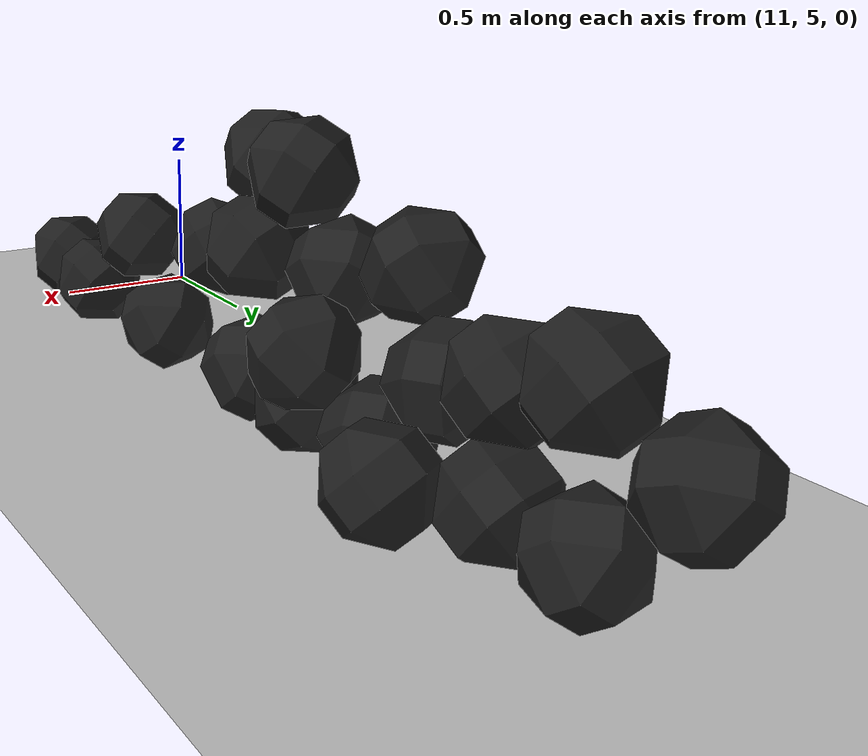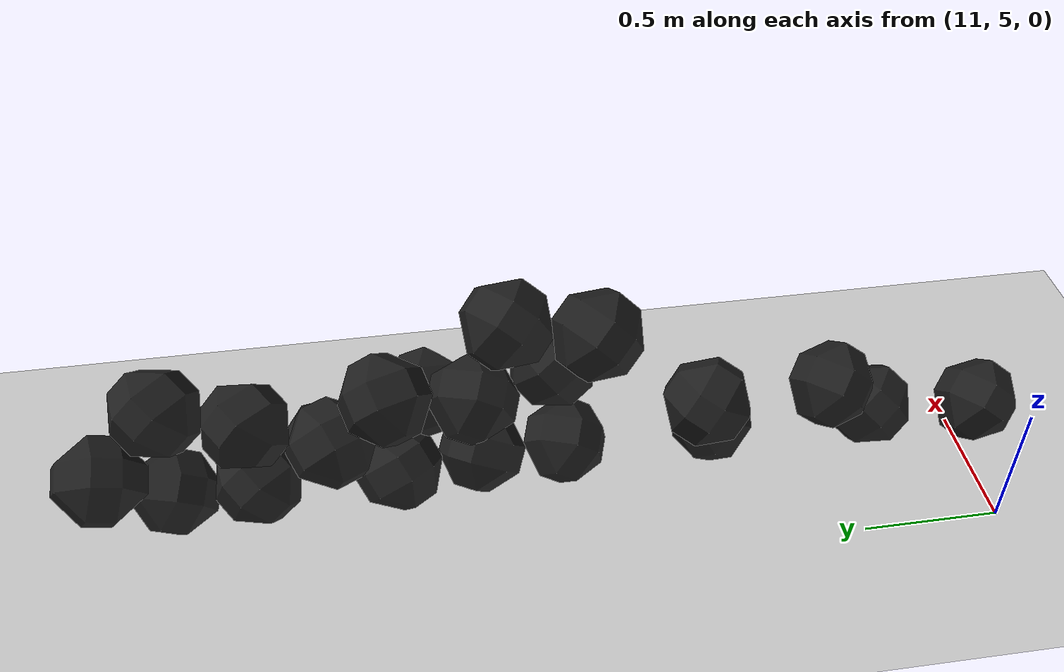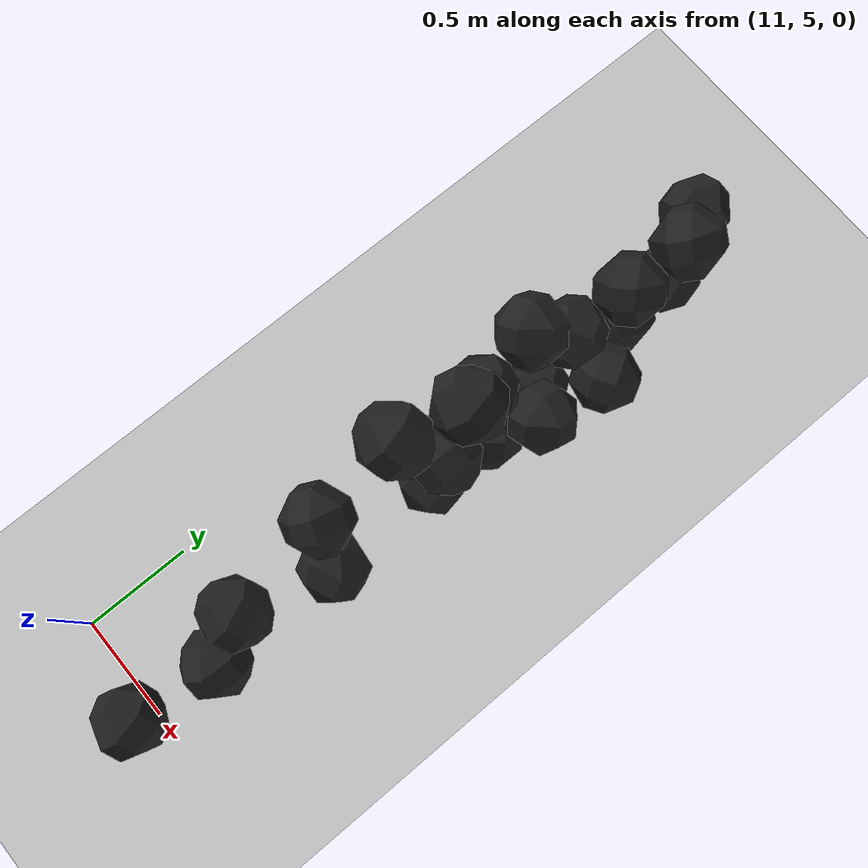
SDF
<sdf version="1.6">
 <world name="default">
  <model name="ground_plane">
   <static>1</static>
   <link name="link">
    <collision name="collision">
     <geometry><plane><normal>0 0 1</normal><size>100 100</size></plane></geometry>
     <surface><friction><ode><mu>100</mu><mu2>50</mu2></ode></friction></surface>
    </collision>
    <visual name="visual">
     <cast_shadows>0</cast_shadows>
     <geometry><plane><normal>0 0 1</normal><size>100 100</size></plane></geometry>
     <material>
      <script><uri>file://media/materials/scripts/gazebo.material</uri><name>Gazebo/Grey</name></script>
     </material>
    </visual>
   </link>
  </model>
  <model name="haoduomiantiaa_2">
   <link name="link_0">
    <inertial>
     <mass>0.2</mass>
     <inertia>
      <ixx>0.166667</ixx>
      <ixy>0</ixy>
      <ixz>0</ixz>
      <iyy>0.166667</iyy>
      <iyz>0</iyz>
      <izz>0.166667</izz>
     </inertia>
    </inertial>
    <visual name="visual">
     <geometry>
      <mesh>
       <uri>/home/oliver/catkin_ws/src/pudong_gazebo/world/stl/haoduomianti.stl</uri>
       <scale>1 1 1</scale>
      </mesh>
     </geometry>
     <material>
      <lighting>1</lighting>
      <script><uri>file://media/materials/scripts/gazebo.material</uri><name>Gazebo/Black</name></script>
      <shader type="pixel"><normal_map>__default__</normal_map></shader>
      <ambient>0.3 0.3 0.3 1</ambient>
      <diffuse>0.7 0.7 0.7 1</diffuse>
      <specular>0.01 0.01 0.01 1</specular>
      <emissive>0 0 0 1</emissive>
     </material>
    </visual>
    <collision name="collision">
     <geometry>
      <mesh>
       <uri>/home/oliver/catkin_ws/src/pudong_gazebo/world/stl/haoduomianti.stl</uri>
       <scale>1 1 1</scale>
      </mesh>
     </geometry>
     <surface>
      <friction>
       <ode><mu>1</mu><mu2>1</mu2><fdir1>0 0 0</fdir1><slip1>0</slip1><slip2>0</slip2></ode>
       <torsional>
        <coefficient>1</coefficient>
        <patch_radius>0</patch_radius>
        <surface_radius>0</surface_radius>
        <use_patch_radius>1</use_patch_radius>
        <ode><slip>0</slip></ode>
       </torsional>
      </friction>
      <bounce><restitution_coefficient>0</restitution_coefficient><threshold>1e+06</threshold></bounce>
      <contact>
       <collide_without_contact>0</collide_without_contact>
       <collide_without_contact_bitmask>1</collide_without_contact_bitmask>
       <collide_bitmask>1</collide_bitmask>
       <ode>
        <soft_cfm>0</soft_cfm>
        <soft_erp>0.2</soft_erp>
        <kp>1e+13</kp>
        <kd>1</kd>
        <max_vel>0.01</max_vel>
        <min_depth>0</min_depth>
       </ode>
       <bullet>
        <split_impulse>1</split_impulse>
        <split_impulse_penetration_threshold>-0.01</split_impulse_penetration_threshold>
        <soft_cfm>0</soft_cfm>
        <soft_erp>0.2</soft_erp>
        <kp>1e+13</kp>
        <kd>1</kd>
       </bullet>
      </contact>
     </surface>
    </collision>
   </link>
   <static>0</static>
   <pose>11.348 7.28594 -0.07324 1.57335 -0.785956 0.646632</pose>
  </model>
  <model name="haoduomiantiaa_8">
   <link name="link_0">
    <inertial>
     <mass>0.2</mass>
     <inertia>
      <ixx>0.166667</ixx>
      <ixy>0</ixy>
      <ixz>0</ixz>
      <iyy>0.166667</iyy>
      <iyz>0</iyz>
      <izz>0.166667</izz>
     </inertia>
    </inertial>
    <visual name="visual">
     <geometry>
      <mesh>
       <uri>/home/oliver/catkin_ws/src/pudong_gazebo/world/stl/haoduomianti.stl</uri>
       <scale>1 1 1</scale>
      </mesh>
     </geometry>
     <material>
      <lighting>1</lighting>
      <script><uri>file://media/materials/scripts/gazebo.material</uri><name>Gazebo/Black</name></script>
      <shader type="pixel"><normal_map>__default__</normal_map></shader>
      <ambient>0.3 0.3 0.3 1</ambient>
      <diffuse>0.7 0.7 0.7 1</diffuse>
      <specular>0.01 0.01 0.01 1</specular>
      <emissive>0 0 0 1</emissive>
     </material>
    </visual>
    <collision name="collision">
     <geometry>
      <mesh>
       <uri>/home/oliver/catkin_ws/src/pudong_gazebo/world/stl/haoduomianti.stl</uri>
       <scale>1 1 1</scale>
      </mesh>
     </geometry>
     <surface>
      <friction>
       <ode><mu>1</mu><mu2>1</mu2><fdir1>0 0 0</fdir1><slip1>0</slip1><slip2>0</slip2></ode>
       <torsional>
        <coefficient>1</coefficient>
        <patch_radius>0</patch_radius>
        <surface_radius>0</surface_radius>
        <use_patch_radius>1</use_patch_radius>
        <ode><slip>0</slip></ode>
       </torsional>
      </friction>
      <bounce><restitution_coefficient>0</restitution_coefficient><threshold>1e+06</threshold></bounce>
      <contact>
       <collide_without_contact>0</collide_without_contact>
       <collide_without_contact_bitmask>1</collide_without_contact_bitmask>
       <collide_bitmask>1</collide_bitmask>
       <ode>
        <soft_cfm>0</soft_cfm>
        <soft_erp>0.2</soft_erp>
        <kp>1e+13</kp>
        <kd>1</kd>
        <max_vel>0.01</max_vel>
        <min_depth>0</min_depth>
       </ode>
       <bullet>
        <split_impulse>1</split_impulse>
        <split_impulse_penetration_threshold>-0.01</split_impulse_penetration_threshold>
        <soft_cfm>0</soft_cfm>
        <soft_erp>0.2</soft_erp>
        <kp>1e+13</kp>
        <kd>1</kd>
       </bullet>
      </contact>
     </surface>
    </collision>
   </link>
   <static>0</static>
   <pose>11.5057 5.97328 -0.113439 0.784591 -0.616666 -2.20719</pose>
  </model>
  <model name="haoduomiantiaa_10">
   <link name="link_0">
    <inertial>
     <mass>0.2</mass>
     <inertia>
      <ixx>0.166667</ixx>
      <ixy>0</ixy>
      <ixz>0</ixz>
      <iyy>0.166667</iyy>
      <iyz>0</iyz>
      <izz>0.166667</izz>
     </inertia>
    </inertial>
    <visual name="visual">
     <geometry>
      <mesh>
       <uri>/home/oliver/catkin_ws/src/pudong_gazebo/world/stl/haoduomianti.stl</uri>
       <scale>1 1 1</scale>
      </mesh>
     </geometry>
     <material>
      <lighting>1</lighting>
      <script><uri>file://media/materials/scripts/gazebo.material</uri><name>Gazebo/Black</name></script>
      <shader type="pixel"><normal_map>__default__</normal_map></shader>
      <ambient>0.3 0.3 0.3 1</ambient>
      <diffuse>0.7 0.7 0.7 1</diffuse>
      <specular>0.01 0.01 0.01 1</specular>
      <emissive>0 0 0 1</emissive>
     </material>
    </visual>
    <collision name="collision">
     <geometry>
      <mesh>
       <uri>/home/oliver/catkin_ws/src/pudong_gazebo/world/stl/haoduomianti.stl</uri>
       <scale>1 1 1</scale>
      </mesh>
     </geometry>
     <surface>
      <friction>
       <ode><mu>1</mu><mu2>1</mu2><fdir1>0 0 0</fdir1><slip1>0</slip1><slip2>0</slip2></ode>
       <torsional>
        <coefficient>1</coefficient>
        <patch_radius>0</patch_radius>
        <surface_radius>0</surface_radius>
        <use_patch_radius>1</use_patch_radius>
        <ode><slip>0</slip></ode>
       </torsional>
      </friction>
      <bounce><restitution_coefficient>0</restitution_coefficient><threshold>1e+06</threshold></bounce>
      <contact>
       <collide_without_contact>0</collide_without_contact>
       <collide_without_contact_bitmask>1</collide_without_contact_bitmask>
       <collide_bitmask>1</collide_bitmask>
       <ode>
        <soft_cfm>0</soft_cfm>
        <soft_erp>0.2</soft_erp>
        <kp>1e+13</kp>
        <kd>1</kd>
        <max_vel>0.01</max_vel>
        <min_depth>0</min_depth>
       </ode>
       <bullet>
        <split_impulse>1</split_impulse>
        <split_impulse_penetration_threshold>-0.01</split_impulse_penetration_threshold>
        <soft_cfm>0</soft_cfm>
        <soft_erp>0.2</soft_erp>
        <kp>1e+13</kp>
        <kd>1</kd>
       </bullet>
      </contact>
     </surface>
    </collision>
   </link>
   <static>0</static>
   <pose>11.5522 6.95737 -0.0816 1.41039 -0.778921 -0.520267</pose>
  </model>
  <model name="haoduomiantiaa_14">
   <link name="link_0">
    <inertial>
     <mass>0.2</mass>
     <inertia>
      <ixx>0.166667</ixx>
      <ixy>0</ixy>
      <ixz>0</ixz>
      <iyy>0.166667</iyy>
      <iyz>0</iyz>
      <izz>0.166667</izz>
     </inertia>
    </inertial>
    <visual name="visual">
     <geometry>
      <mesh>
       <uri>/home/oliver/catkin_ws/src/pudong_gazebo/world/stl/haoduomianti.stl</uri>
       <scale>1 1 1</scale>
      </mesh>
     </geometry>
     <material>
      <lighting>1</lighting>
      <script><uri>file://media/materials/scripts/gazebo.material</uri><name>Gazebo/Black</name></script>
      <shader type="pixel"><normal_map>__default__</normal_map></shader>
      <ambient>0.3 0.3 0.3 1</ambient>
      <diffuse>0.7 0.7 0.7 1</diffuse>
      <specular>0.01 0.01 0.01 1</specular>
      <emissive>0 0 0 1</emissive>
     </material>
    </visual>
    <collision name="collision">
     <geometry>
      <mesh>
       <uri>/home/oliver/catkin_ws/src/pudong_gazebo/world/stl/haoduomianti.stl</uri>
       <scale>1 1 1</scale>
      </mesh>
     </geometry>
     <surface>
      <friction>
       <ode><mu>1</mu><mu2>1</mu2><fdir1>0 0 0</fdir1><slip1>0</slip1><slip2>0</slip2></ode>
       <torsional>
        <coefficient>1</coefficient>
        <patch_radius>0</patch_radius>
        <surface_radius>0</surface_radius>
        <use_patch_radius>1</use_patch_radius>
        <ode><slip>0</slip></ode>
       </torsional>
      </friction>
      <bounce><restitution_coefficient>0</restitution_coefficient><threshold>1e+06</threshold></bounce>
      <contact>
       <collide_without_contact>0</collide_without_contact>
       <collide_without_contact_bitmask>1</collide_without_contact_bitmask>
       <collide_bitmask>1</collide_bitmask>
       <ode>
        <soft_cfm>0</soft_cfm>
        <soft_erp>0.2</soft_erp>
        <kp>1e+13</kp>
        <kd>1</kd>
        <max_vel>0.01</max_vel>
        <min_depth>0</min_depth>
       </ode>
       <bullet>
        <split_impulse>1</split_impulse>
        <split_impulse_penetration_threshold>-0.01</split_impulse_penetration_threshold>
        <soft_cfm>0</soft_cfm>
        <soft_erp>0.2</soft_erp>
        <kp>1e+13</kp>
        <kd>1</kd>
       </bullet>
      </contact>
     </surface>
    </collision>
   </link>
   <static>0</static>
   <pose>11.4519 6.55197 -0.110442 0.785235 -0.508506 -0.335704</pose>
  </model>
  <model name="haoduomiantiaa_27">
   <link name="link_0">
    <inertial>
     <mass>0.2</mass>
     <inertia>
      <ixx>0.166667</ixx>
      <ixy>0</ixy>
      <ixz>0</ixz>
      <iyy>0.166667</iyy>
      <iyz>0</iyz>
      <izz>0.166667</izz>
     </inertia>
    </inertial>
    <visual name="visual">
     <geometry>
      <mesh>
       <uri>/home/oliver/catkin_ws/src/pudong_gazebo/world/stl/haoduomianti.stl</uri>
       <scale>1 1 1</scale>
      </mesh>
     </geometry>
     <material>
      <lighting>1</lighting>
      <script><uri>file://media/materials/scripts/gazebo.material</uri><name>Gazebo/Black</name></script>
      <shader type="pixel"><normal_map>__default__</normal_map></shader>
      <ambient>0.3 0.3 0.3 1</ambient>
      <diffuse>0.7 0.7 0.7 1</diffuse>
      <specular>0.01 0.01 0.01 1</specular>
      <emissive>0 0 0 1</emissive>
     </material>
    </visual>
    <collision name="collision">
     <geometry>
      <mesh>
       <uri>/home/oliver/catkin_ws/src/pudong_gazebo/world/stl/haoduomianti.stl</uri>
       <scale>1 1 1</scale>
      </mesh>
     </geometry>
     <surface>
      <friction>
       <ode><mu>1</mu><mu2>1</mu2><fdir1>0 0 0</fdir1><slip1>0</slip1><slip2>0</slip2></ode>
       <torsional>
        <coefficient>1</coefficient>
        <patch_radius>0</patch_radius>
        <surface_radius>0</surface_radius>
        <use_patch_radius>1</use_patch_radius>
        <ode><slip>0</slip></ode>
       </torsional>
      </friction>
      <bounce><restitution_coefficient>0</restitution_coefficient><threshold>1e+06</threshold></bounce>
      <contact>
       <collide_without_contact>0</collide_without_contact>
       <collide_without_contact_bitmask>1</collide_without_contact_bitmask>
       <collide_bitmask>1</collide_bitmask>
       <ode>
        <soft_cfm>0</soft_cfm>
        <soft_erp>0.2</soft_erp>
        <kp>1e+13</kp>
        <kd>1</kd>
        <max_vel>0.01</max_vel>
        <min_depth>0</min_depth>
       </ode>
       <bullet>
        <split_impulse>1</split_impulse>
        <split_impulse_penetration_threshold>-0.01</split_impulse_penetration_threshold>
        <soft_cfm>0</soft_cfm>
        <soft_erp>0.2</soft_erp>
        <kp>1e+13</kp>
        <kd>1</kd>
       </bullet>
      </contact>
     </surface>
    </collision>
   </link>
   <static>0</static>
   <pose>11.4927 7.36241 -0.074828 0.059081 -0.783933 -1.06739</pose>
  </model>
  <model name="haoduomiantiaa_29">
   <link name="link_0">
    <inertial>
     <mass>0.2</mass>
     <inertia>
      <ixx>0.166667</ixx>
      <ixy>0</ixy>
      <ixz>0</ixz>
      <iyy>0.166667</iyy>
      <iyz>0</iyz>
      <izz>0.166667</izz>
     </inertia>
    </inertial>
    <visual name="visual">
     <geometry>
      <mesh>
       <uri>/home/oliver/catkin_ws/src/pudong_gazebo/world/stl/haoduomianti.stl</uri>
       <scale>1 1 1</scale>
      </mesh>
     </geometry>
     <material>
      <lighting>1</lighting>
      <script><uri>file://media/materials/scripts/gazebo.material</uri><name>Gazebo/Black</name></script>
      <shader type="pixel"><normal_map>__default__</normal_map></shader>
      <ambient>0.3 0.3 0.3 1</ambient>
      <diffuse>0.7 0.7 0.7 1</diffuse>
      <specular>0.01 0.01 0.01 1</specular>
      <emissive>0 0 0 1</emissive>
     </material>
    </visual>
    <collision name="collision">
     <geometry>
      <mesh>
       <uri>/home/oliver/catkin_ws/src/pudong_gazebo/world/stl/haoduomianti.stl</uri>
       <scale>1 1 1</scale>
      </mesh>
     </geometry>
     <surface>
      <friction>
       <ode><mu>1</mu><mu2>1</mu2><fdir1>0 0 0</fdir1><slip1>0</slip1><slip2>0</slip2></ode>
       <torsional>
        <coefficient>1</coefficient>
        <patch_radius>0</patch_radius>
        <surface_radius>0</surface_radius>
        <use_patch_radius>1</use_patch_radius>
        <ode><slip>0</slip></ode>
       </torsional>
      </friction>
      <bounce><restitution_coefficient>0</restitution_coefficient><threshold>1e+06</threshold></bounce>
      <contact>
       <collide_without_contact>0</collide_without_contact>
       <collide_without_contact_bitmask>1</collide_without_contact_bitmask>
       <collide_bitmask>1</collide_bitmask>
       <ode>
        <soft_cfm>0</soft_cfm>
        <soft_erp>0.2</soft_erp>
        <kp>1e+13</kp>
        <kd>1</kd>
        <max_vel>0.01</max_vel>
        <min_depth>0</min_depth>
       </ode>
       <bullet>
        <split_impulse>1</split_impulse>
        <split_impulse_penetration_threshold>-0.01</split_impulse_penetration_threshold>
        <soft_cfm>0</soft_cfm>
        <soft_erp>0.2</soft_erp>
        <kp>1e+13</kp>
        <kd>1</kd>
       </bullet>
      </contact>
     </surface>
    </collision>
   </link>
   <static>0</static>
   <pose>11.4381 7.97196 -0.11547 0.78603 -0.615774 1.81894</pose>
  </model>
  <model name="haoduomiantiaa_79">
   <link name="link_0">
    <inertial>
     <mass>0.2</mass>
     <inertia>
      <ixx>0.166667</ixx>
      <ixy>0</ixy>
      <ixz>0</ixz>
      <iyy>0.166667</iyy>
      <iyz>0</iyz>
      <izz>0.166667</izz>
     </inertia>
    </inertial>
    <visual name="visual">
     <geometry>
      <mesh>
       <uri>/home/oliver/catkin_ws/src/pudong_gazebo/world/stl/haoduomianti.stl</uri>
       <scale>1 1 1</scale>
      </mesh>
     </geometry>
     <material>
      <lighting>1</lighting>
      <script><uri>file://media/materials/scripts/gazebo.material</uri><name>Gazebo/Black</name></script>
      <shader type="pixel"><normal_map>__default__</normal_map></shader>
      <ambient>0.3 0.3 0.3 1</ambient>
      <diffuse>0.7 0.7 0.7 1</diffuse>
      <specular>0.01 0.01 0.01 1</specular>
      <emissive>0 0 0 1</emissive>
     </material>
    </visual>
    <collision name="collision">
     <geometry>
      <mesh>
       <uri>/home/oliver/catkin_ws/src/pudong_gazebo/world/stl/haoduomianti.stl</uri>
       <scale>1 1 1</scale>
      </mesh>
     </geometry>
     <surface>
      <friction>
       <ode><mu>1</mu><mu2>1</mu2><fdir1>0 0 0</fdir1><slip1>0</slip1><slip2>0</slip2></ode>
       <torsional>
        <coefficient>1</coefficient>
        <patch_radius>0</patch_radius>
        <surface_radius>0</surface_radius>
        <use_patch_radius>1</use_patch_radius>
        <ode><slip>0</slip></ode>
       </torsional>
      </friction>
      <bounce><restitution_coefficient>0</restitution_coefficient><threshold>1e+06</threshold></bounce>
      <contact>
       <collide_without_contact>0</collide_without_contact>
       <collide_without_contact_bitmask>1</collide_without_contact_bitmask>
       <collide_bitmask>1</collide_bitmask>
       <ode>
        <soft_cfm>0</soft_cfm>
        <soft_erp>0.2</soft_erp>
        <kp>1e+13</kp>
        <kd>1</kd>
        <max_vel>0.01</max_vel>
        <min_depth>0</min_depth>
       </ode>
       <bullet>
        <split_impulse>1</split_impulse>
        <split_impulse_penetration_threshold>-0.01</split_impulse_penetration_threshold>
        <soft_cfm>0</soft_cfm>
        <soft_erp>0.2</soft_erp>
        <kp>1e+13</kp>
        <kd>1</kd>
       </bullet>
      </contact>
     </surface>
    </collision>
   </link>
   <static>0</static>
   <pose>11.5342 6.619 0.280314 0.657845 -0.811492 1.09686</pose>
  </model>
  <model name="haoduomiantiaa_83">
   <link name="link_0">
    <inertial>
     <mass>0.2</mass>
     <inertia>
      <ixx>0.166667</ixx>
      <ixy>0</ixy>
      <ixz>0</ixz>
      <iyy>0.166667</iyy>
      <iyz>0</iyz>
      <izz>0.166667</izz>
     </inertia>
    </inertial>
    <visual name="visual">
     <geometry>
      <mesh>
       <uri>/home/oliver/catkin_ws/src/pudong_gazebo/world/stl/haoduomianti.stl</uri>
       <scale>1 1 1</scale>
      </mesh>
     </geometry>
     <material>
      <lighting>1</lighting>
      <script><uri>file://media/materials/scripts/gazebo.material</uri><name>Gazebo/Black</name></script>
      <shader type="pixel"><normal_map>__default__</normal_map></shader>
      <ambient>0.3 0.3 0.3 1</ambient>
      <diffuse>0.7 0.7 0.7 1</diffuse>
      <specular>0.01 0.01 0.01 1</specular>
      <emissive>0 0 0 1</emissive>
     </material>
    </visual>
    <collision name="collision">
     <geometry>
      <mesh>
       <uri>/home/oliver/catkin_ws/src/pudong_gazebo/world/stl/haoduomianti.stl</uri>
       <scale>1 1 1</scale>
      </mesh>
     </geometry>
     <surface>
      <friction>
       <ode><mu>1</mu><mu2>1</mu2><fdir1>0 0 0</fdir1><slip1>0</slip1><slip2>0</slip2></ode>
       <torsional>
        <coefficient>1</coefficient>
        <patch_radius>0</patch_radius>
        <surface_radius>0</surface_radius>
        <use_patch_radius>1</use_patch_radius>
        <ode><slip>0</slip></ode>
       </torsional>
      </friction>
      <bounce><restitution_coefficient>0</restitution_coefficient><threshold>1e+06</threshold></bounce>
      <contact>
       <collide_without_contact>0</collide_without_contact>
       <collide_without_contact_bitmask>1</collide_without_contact_bitmask>
       <collide_bitmask>1</collide_bitmask>
       <ode>
        <soft_cfm>0</soft_cfm>
        <soft_erp>0.2</soft_erp>
        <kp>1e+13</kp>
        <kd>1</kd>
        <max_vel>0.01</max_vel>
        <min_depth>0</min_depth>
       </ode>
       <bullet>
        <split_impulse>1</split_impulse>
        <split_impulse_penetration_threshold>-0.01</split_impulse_penetration_threshold>
        <soft_cfm>0</soft_cfm>
        <soft_erp>0.2</soft_erp>
        <kp>1e+13</kp>
        <kd>1</kd>
       </bullet>
      </contact>
     </surface>
    </collision>
   </link>
   <static>0</static>
   <pose>11.5662 7.10038 0.107197 0.640517 -0.857199 2.49027</pose>
  </model>
  <model name="haoduomiantiaa_84">
   <link name="link_0">
    <inertial>
     <mass>0.2</mass>
     <inertia>
      <ixx>0.166667</ixx>
      <ixy>0</ixy>
      <ixz>0</ixz>
      <iyy>0.166667</iyy>
      <iyz>0</iyz>
      <izz>0.166667</izz>
     </inertia>
    </inertial>
    <visual name="visual">
     <geometry>
      <mesh>
       <uri>/home/oliver/catkin_ws/src/pudong_gazebo/world/stl/haoduomianti.stl</uri>
       <scale>1 1 1</scale>
      </mesh>
     </geometry>
     <material>
      <lighting>1</lighting>
      <script><uri>file://media/materials/scripts/gazebo.material</uri><name>Gazebo/Black</name></script>
      <shader type="pixel"><normal_map>__default__</normal_map></shader>
      <ambient>0.3 0.3 0.3 1</ambient>
      <diffuse>0.7 0.7 0.7 1</diffuse>
      <specular>0.01 0.01 0.01 1</specular>
      <emissive>0 0 0 1</emissive>
     </material>
    </visual>
    <collision name="collision">
     <geometry>
      <mesh>
       <uri>/home/oliver/catkin_ws/src/pudong_gazebo/world/stl/haoduomianti.stl</uri>
       <scale>1 1 1</scale>
      </mesh>
     </geometry>
     <surface>
      <friction>
       <ode><mu>1</mu><mu2>1</mu2><fdir1>0 0 0</fdir1><slip1>0</slip1><slip2>0</slip2></ode>
       <torsional>
        <coefficient>1</coefficient>
        <patch_radius>0</patch_radius>
        <surface_radius>0</surface_radius>
        <use_patch_radius>1</use_patch_radius>
        <ode><slip>0</slip></ode>
       </torsional>
      </friction>
      <bounce><restitution_coefficient>0</restitution_coefficient><threshold>1e+06</threshold></bounce>
      <contact>
       <collide_without_contact>0</collide_without_contact>
       <collide_without_contact_bitmask>1</collide_without_contact_bitmask>
       <collide_bitmask>1</collide_bitmask>
       <ode>
        <soft_cfm>0</soft_cfm>
        <soft_erp>0.2</soft_erp>
        <kp>1e+13</kp>
        <kd>1</kd>
        <max_vel>0.01</max_vel>
        <min_depth>0</min_depth>
       </ode>
       <bullet>
        <split_impulse>1</split_impulse>
        <split_impulse_penetration_threshold>-0.01</split_impulse_penetration_threshold>
        <soft_cfm>0</soft_cfm>
        <soft_erp>0.2</soft_erp>
        <kp>1e+13</kp>
        <kd>1</kd>
       </bullet>
      </contact>
     </surface>
    </collision>
   </link>
   <static>0</static>
   <pose>11.2973 8.10294 0.104415 0.95524 -0.854875 -2.45234</pose>
  </model>
  <model name="haoduomiantiaa_86">
   <link name="link_0">
    <inertial>
     <mass>0.2</mass>
     <inertia>
      <ixx>0.166667</ixx>
      <ixy>0</ixy>
      <ixz>0</ixz>
      <iyy>0.166667</iyy>
      <iyz>0</iyz>
      <izz>0.166667</izz>
     </inertia>
    </inertial>
    <visual name="visual">
     <geometry>
      <mesh>
       <uri>/home/oliver/catkin_ws/src/pudong_gazebo/world/stl/haoduomianti.stl</uri>
       <scale>1 1 1</scale>
      </mesh>
     </geometry>
     <material>
      <lighting>1</lighting>
      <script><uri>file://media/materials/scripts/gazebo.material</uri><name>Gazebo/Black</name></script>
      <shader type="pixel"><normal_map>__default__</normal_map></shader>
      <ambient>0.3 0.3 0.3 1</ambient>
      <diffuse>0.7 0.7 0.7 1</diffuse>
      <specular>0.01 0.01 0.01 1</specular>
      <emissive>0 0 0 1</emissive>
     </material>
    </visual>
    <collision name="collision">
     <geometry>
      <mesh>
       <uri>/home/oliver/catkin_ws/src/pudong_gazebo/world/stl/haoduomianti.stl</uri>
       <scale>1 1 1</scale>
      </mesh>
     </geometry>
     <surface>
      <friction>
       <ode><mu>1</mu><mu2>1</mu2><fdir1>0 0 0</fdir1><slip1>0</slip1><slip2>0</slip2></ode>
       <torsional>
        <coefficient>1</coefficient>
        <patch_radius>0</patch_radius>
        <surface_radius>0</surface_radius>
        <use_patch_radius>1</use_patch_radius>
        <ode><slip>0</slip></ode>
       </torsional>
      </friction>
      <bounce><restitution_coefficient>0</restitution_coefficient><threshold>1e+06</threshold></bounce>
      <contact>
       <collide_without_contact>0</collide_without_contact>
       <collide_without_contact_bitmask>1</collide_without_contact_bitmask>
       <collide_bitmask>1</collide_bitmask>
       <ode>
        <soft_cfm>0</soft_cfm>
        <soft_erp>0.2</soft_erp>
        <kp>1e+13</kp>
        <kd>1</kd>
        <max_vel>0.01</max_vel>
        <min_depth>0</min_depth>
       </ode>
       <bullet>
        <split_impulse>1</split_impulse>
        <split_impulse_penetration_threshold>-0.01</split_impulse_penetration_threshold>
        <soft_cfm>0</soft_cfm>
        <soft_erp>0.2</soft_erp>
        <kp>1e+13</kp>
        <kd>1</kd>
       </bullet>
      </contact>
     </surface>
    </collision>
   </link>
   <static>0</static>
   <pose>11.4284 7.2417 0.138095 0.035423 -0.603452 0.508419</pose>
  </model>
  <model name="haoduomiantiaa_89">
   <link name="link_0">
    <inertial>
     <mass>0.2</mass>
     <inertia>
      <ixx>0.166667</ixx>
      <ixy>0</ixy>
      <ixz>0</ixz>
      <iyy>0.166667</iyy>
      <iyz>0</iyz>
      <izz>0.166667</izz>
     </inertia>
    </inertial>
    <visual name="visual">
     <geometry>
      <mesh>
       <uri>/home/oliver/catkin_ws/src/pudong_gazebo/world/stl/haoduomianti.stl</uri>
       <scale>1 1 1</scale>
      </mesh>
     </geometry>
     <material>
      <lighting>1</lighting>
      <script><uri>file://media/materials/scripts/gazebo.material</uri><name>Gazebo/Black</name></script>
      <shader type="pixel"><normal_map>__default__</normal_map></shader>
      <ambient>0.3 0.3 0.3 1</ambient>
      <diffuse>0.7 0.7 0.7 1</diffuse>
      <specular>0.01 0.01 0.01 1</specular>
      <emissive>0 0 0 1</emissive>
     </material>
    </visual>
    <collision name="collision">
     <geometry>
      <mesh>
       <uri>/home/oliver/catkin_ws/src/pudong_gazebo/world/stl/haoduomianti.stl</uri>
       <scale>1 1 1</scale>
      </mesh>
     </geometry>
     <surface>
      <friction>
       <ode><mu>1</mu><mu2>1</mu2><fdir1>0 0 0</fdir1><slip1>0</slip1><slip2>0</slip2></ode>
       <torsional>
        <coefficient>1</coefficient>
        <patch_radius>0</patch_radius>
        <surface_radius>0</surface_radius>
        <use_patch_radius>1</use_patch_radius>
        <ode><slip>0</slip></ode>
       </torsional>
      </friction>
      <bounce><restitution_coefficient>0</restitution_coefficient><threshold>1e+06</threshold></bounce>
      <contact>
       <collide_without_contact>0</collide_without_contact>
       <collide_without_contact_bitmask>1</collide_without_contact_bitmask>
       <collide_bitmask>1</collide_bitmask>
       <ode>
        <soft_cfm>0</soft_cfm>
        <soft_erp>0.2</soft_erp>
        <kp>1e+13</kp>
        <kd>1</kd>
        <max_vel>0.01</max_vel>
        <min_depth>0</min_depth>
       </ode>
       <bullet>
        <split_impulse>1</split_impulse>
        <split_impulse_penetration_threshold>-0.01</split_impulse_penetration_threshold>
        <soft_cfm>0</soft_cfm>
        <soft_erp>0.2</soft_erp>
        <kp>1e+13</kp>
        <kd>1</kd>
       </bullet>
      </contact>
     </surface>
    </collision>
   </link>
   <static>0</static>
   <pose>11.423 7.66068 -0.111939 0.697469 -0.653958 -1.30675</pose>
  </model>
  <model name="haoduomiantiaa_95">
   <link name="link_0">
    <inertial>
     <mass>0.2</mass>
     <inertia>
      <ixx>0.166667</ixx>
      <ixy>0</ixy>
      <ixz>0</ixz>
      <iyy>0.166667</iyy>
      <iyz>0</iyz>
      <izz>0.166667</izz>
     </inertia>
    </inertial>
    <visual name="visual">
     <geometry>
      <mesh>
       <uri>/home/oliver/catkin_ws/src/pudong_gazebo/world/stl/haoduomianti.stl</uri>
       <scale>1 1 1</scale>
      </mesh>
     </geometry>
     <material>
      <lighting>1</lighting>
      <script><uri>file://media/materials/scripts/gazebo.material</uri><name>Gazebo/Black</name></script>
      <shader type="pixel"><normal_map>__default__</normal_map></shader>
      <ambient>0.3 0.3 0.3 1</ambient>
      <diffuse>0.7 0.7 0.7 1</diffuse>
      <specular>0.01 0.01 0.01 1</specular>
      <emissive>0 0 0 1</emissive>
     </material>
    </visual>
    <collision name="collision">
     <geometry>
      <mesh>
       <uri>/home/oliver/catkin_ws/src/pudong_gazebo/world/stl/haoduomianti.stl</uri>
       <scale>1 1 1</scale>
      </mesh>
     </geometry>
     <surface>
      <friction>
       <ode><mu>1</mu><mu2>1</mu2><fdir1>0 0 0</fdir1><slip1>0</slip1><slip2>0</slip2></ode>
       <torsional>
        <coefficient>1</coefficient>
        <patch_radius>0</patch_radius>
        <surface_radius>0</surface_radius>
        <use_patch_radius>1</use_patch_radius>
        <ode><slip>0</slip></ode>
       </torsional>
      </friction>
      <bounce><restitution_coefficient>0</restitution_coefficient><threshold>1e+06</threshold></bounce>
      <contact>
       <collide_without_contact>0</collide_without_contact>
       <collide_without_contact_bitmask>1</collide_without_contact_bitmask>
       <collide_bitmask>1</collide_bitmask>
       <ode>
        <soft_cfm>0</soft_cfm>
        <soft_erp>0.2</soft_erp>
        <kp>1e+13</kp>
        <kd>1</kd>
        <max_vel>0.01</max_vel>
        <min_depth>0</min_depth>
       </ode>
       <bullet>
        <split_impulse>1</split_impulse>
        <split_impulse_penetration_threshold>-0.01</split_impulse_penetration_threshold>
        <soft_cfm>0</soft_cfm>
        <soft_erp>0.2</soft_erp>
        <kp>1e+13</kp>
        <kd>1</kd>
       </bullet>
      </contact>
     </surface>
    </collision>
   </link>
   <static>0</static>
   <pose>11.3667 7.61832 0.197328 0.450443 -0.76275 -1.22531</pose>
  </model>
  <model name="haoduomiantiaa_100">
   <link name="link_0">
    <inertial>
     <mass>0.2</mass>
     <inertia>
      <ixx>0.166667</ixx>
      <ixy>0</ixy>
      <ixz>0</ixz>
      <iyy>0.166667</iyy>
      <iyz>0</iyz>
      <izz>0.166667</izz>
     </inertia>
    </inertial>
    <visual name="visual">
     <geometry>
      <mesh>
       <uri>/home/oliver/catkin_ws/src/pudong_gazebo/world/stl/haoduomianti.stl</uri>
       <scale>1 1 1</scale>
      </mesh>
     </geometry>
     <material>
      <lighting>1</lighting>
      <script><uri>file://media/materials/scripts/gazebo.material</uri><name>Gazebo/Black</name></script>
      <shader type="pixel"><normal_map>__default__</normal_map></shader>
      <ambient>0.3 0.3 0.3 1</ambient>
      <diffuse>0.7 0.7 0.7 1</diffuse>
      <specular>0.01 0.01 0.01 1</specular>
      <emissive>0 0 0 1</emissive>
     </material>
    </visual>
    <collision name="collision">
     <geometry>
      <mesh>
       <uri>/home/oliver/catkin_ws/src/pudong_gazebo/world/stl/haoduomianti.stl</uri>
       <scale>1 1 1</scale>
      </mesh>
     </geometry>
     <surface>
      <friction>
       <ode><mu>1</mu><mu2>1</mu2><fdir1>0 0 0</fdir1><slip1>0</slip1><slip2>0</slip2></ode>
       <torsional>
        <coefficient>1</coefficient>
        <patch_radius>0</patch_radius>
        <surface_radius>0</surface_radius>
        <use_patch_radius>1</use_patch_radius>
        <ode><slip>0</slip></ode>
       </torsional>
      </friction>
      <bounce><restitution_coefficient>0</restitution_coefficient><threshold>1e+06</threshold></bounce>
      <contact>
       <collide_without_contact>0</collide_without_contact>
       <collide_without_contact_bitmask>1</collide_without_contact_bitmask>
       <collide_bitmask>1</collide_bitmask>
       <ode>
        <soft_cfm>0</soft_cfm>
        <soft_erp>0.2</soft_erp>
        <kp>1e+13</kp>
        <kd>1</kd>
        <max_vel>0.01</max_vel>
        <min_depth>0</min_depth>
       </ode>
       <bullet>
        <split_impulse>1</split_impulse>
        <split_impulse_penetration_threshold>-0.01</split_impulse_penetration_threshold>
        <soft_cfm>0</soft_cfm>
        <soft_erp>0.2</soft_erp>
        <kp>1e+13</kp>
        <kd>1</kd>
       </bullet>
      </contact>
     </surface>
    </collision>
   </link>
   <static>0</static>
   <pose>11.3353 6.85935 0.253316 0.634032 -0.503909 -0.34441</pose>
  </model>
  <model name="haoduomiantiaa_103">
   <link name="link_0">
    <inertial>
     <mass>0.2</mass>
     <inertia>
      <ixx>0.166667</ixx>
      <ixy>0</ixy>
      <ixz>0</ixz>
      <iyy>0.166667</iyy>
      <iyz>0</iyz>
      <izz>0.166667</izz>
     </inertia>
    </inertial>
    <visual name="visual">
     <geometry>
      <mesh>
       <uri>/home/oliver/catkin_ws/src/pudong_gazebo/world/stl/haoduomianti.stl</uri>
       <scale>1 1 1</scale>
      </mesh>
     </geometry>
     <material>
      <lighting>1</lighting>
      <script><uri>file://media/materials/scripts/gazebo.material</uri><name>Gazebo/Black</name></script>
      <shader type="pixel"><normal_map>__default__</normal_map></shader>
      <ambient>0.3 0.3 0.3 1</ambient>
      <diffuse>0.7 0.7 0.7 1</diffuse>
      <specular>0.01 0.01 0.01 1</specular>
      <emissive>0 0 0 1</emissive>
     </material>
    </visual>
    <collision name="collision">
     <geometry>
      <mesh>
       <uri>/home/oliver/catkin_ws/src/pudong_gazebo/world/stl/haoduomianti.stl</uri>
       <scale>1 1 1</scale>
      </mesh>
     </geometry>
     <surface>
      <friction>
       <ode><mu>1</mu><mu2>1</mu2><fdir1>0 0 0</fdir1><slip1>0</slip1><slip2>0</slip2></ode>
       <torsional>
        <coefficient>1</coefficient>
        <patch_radius>0</patch_radius>
        <surface_radius>0</surface_radius>
        <use_patch_radius>1</use_patch_radius>
        <ode><slip>0</slip></ode>
       </torsional>
      </friction>
      <bounce><restitution_coefficient>0</restitution_coefficient><threshold>1e+06</threshold></bounce>
      <contact>
       <collide_without_contact>0</collide_without_contact>
       <collide_without_contact_bitmask>1</collide_without_contact_bitmask>
       <collide_bitmask>1</collide_bitmask>
       <ode>
        <soft_cfm>0</soft_cfm>
        <soft_erp>0.2</soft_erp>
        <kp>1e+13</kp>
        <kd>1</kd>
        <max_vel>0.01</max_vel>
        <min_depth>0</min_depth>
       </ode>
       <bullet>
        <split_impulse>1</split_impulse>
        <split_impulse_penetration_threshold>-0.01</split_impulse_penetration_threshold>
        <soft_cfm>0</soft_cfm>
        <soft_erp>0.2</soft_erp>
        <kp>1e+13</kp>
        <kd>1</kd>
       </bullet>
      </contact>
     </surface>
    </collision>
   </link>
   <static>0</static>
   <pose>11.3888 6.48081 0.503553 0.65182 -0.767744 1.3669</pose>
  </model>
  <model name="haoduomiantiaa_118">
   <link name="link_0">
    <inertial>
     <mass>0.2</mass>
     <inertia>
      <ixx>0.166667</ixx>
      <ixy>0</ixy>
      <ixz>0</ixz>
      <iyy>0.166667</iyy>
      <iyz>0</iyz>
      <izz>0.166667</izz>
     </inertia>
    </inertial>
    <visual name="visual">
     <geometry>
      <mesh>
       <uri>/home/oliver/catkin_ws/src/pudong_gazebo/world/stl/haoduomianti.stl</uri>
       <scale>1 1 1</scale>
      </mesh>
     </geometry>
     <material>
      <lighting>1</lighting>
      <script><uri>file://media/materials/scripts/gazebo.material</uri><name>Gazebo/Black</name></script>
      <shader type="pixel"><normal_map>__default__</normal_map></shader>
      <ambient>0.3 0.3 0.3 1</ambient>
      <diffuse>0.7 0.7 0.7 1</diffuse>
      <specular>0.01 0.01 0.01 1</specular>
      <emissive>0 0 0 1</emissive>
     </material>
    </visual>
    <collision name="collision">
     <geometry>
      <mesh>
       <uri>/home/oliver/catkin_ws/src/pudong_gazebo/world/stl/haoduomianti.stl</uri>
       <scale>1 1 1</scale>
      </mesh>
     </geometry>
     <surface>
      <friction>
       <ode><mu>1</mu><mu2>1</mu2><fdir1>0 0 0</fdir1><slip1>0</slip1><slip2>0</slip2></ode>
       <torsional>
        <coefficient>1</coefficient>
        <patch_radius>0</patch_radius>
        <surface_radius>0</surface_radius>
        <use_patch_radius>1</use_patch_radius>
        <ode><slip>0</slip></ode>
       </torsional>
      </friction>
      <bounce><restitution_coefficient>0</restitution_coefficient><threshold>1e+06</threshold></bounce>
      <contact>
       <collide_without_contact>0</collide_without_contact>
       <collide_without_contact_bitmask>1</collide_without_contact_bitmask>
       <collide_bitmask>1</collide_bitmask>
       <ode>
        <soft_cfm>0</soft_cfm>
        <soft_erp>0.2</soft_erp>
        <kp>1e+13</kp>
        <kd>1</kd>
        <max_vel>0.01</max_vel>
        <min_depth>0</min_depth>
       </ode>
       <bullet>
        <split_impulse>1</split_impulse>
        <split_impulse_penetration_threshold>-0.01</split_impulse_penetration_threshold>
        <soft_cfm>0</soft_cfm>
        <soft_erp>0.2</soft_erp>
        <kp>1e+13</kp>
        <kd>1</kd>
       </bullet>
      </contact>
     </surface>
    </collision>
   </link>
   <static>0</static>
   <pose>11.4379 5.5655 0.091474 0.694461 -0.660186 1.51714</pose>
  </model>
  <model name="haoduomiantiaa_122">
   <link name="link_0">
    <inertial>
     <mass>0.2</mass>
     <inertia>
      <ixx>0.166667</ixx>
      <ixy>0</ixy>
      <ixz>0</ixz>
      <iyy>0.166667</iyy>
      <iyz>0</iyz>
      <izz>0.166667</izz>
     </inertia>
    </inertial>
    <visual name="visual">
     <geometry>
      <mesh>
       <uri>/home/oliver/catkin_ws/src/pudong_gazebo/world/stl/haoduomianti.stl</uri>
       <scale>1 1 1</scale>
      </mesh>
     </geometry>
     <material>
      <lighting>1</lighting>
      <script><uri>file://media/materials/scripts/gazebo.material</uri><name>Gazebo/Black</name></script>
      <shader type="pixel"><normal_map>__default__</normal_map></shader>
      <ambient>0.3 0.3 0.3 1</ambient>
      <diffuse>0.7 0.7 0.7 1</diffuse>
      <specular>0.01 0.01 0.01 1</specular>
      <emissive>0 0 0 1</emissive>
     </material>
    </visual>
    <collision name="collision">
     <geometry>
      <mesh>
       <uri>/home/oliver/catkin_ws/src/pudong_gazebo/world/stl/haoduomianti.stl</uri>
       <scale>1 1 1</scale>
      </mesh>
     </geometry>
     <surface>
      <friction>
       <ode><mu>1</mu><mu2>1</mu2><fdir1>0 0 0</fdir1><slip1>0</slip1><slip2>0</slip2></ode>
       <torsional>
        <coefficient>1</coefficient>
        <patch_radius>0</patch_radius>
        <surface_radius>0</surface_radius>
        <use_patch_radius>1</use_patch_radius>
        <ode><slip>0</slip></ode>
       </torsional>
      </friction>
      <bounce><restitution_coefficient>0</restitution_coefficient><threshold>1e+06</threshold></bounce>
      <contact>
       <collide_without_contact>0</collide_without_contact>
       <collide_without_contact_bitmask>1</collide_without_contact_bitmask>
       <collide_bitmask>1</collide_bitmask>
       <ode>
        <soft_cfm>0</soft_cfm>
        <soft_erp>0.2</soft_erp>
        <kp>1e+13</kp>
        <kd>1</kd>
        <max_vel>0.01</max_vel>
        <min_depth>0</min_depth>
       </ode>
       <bullet>
        <split_impulse>1</split_impulse>
        <split_impulse_penetration_threshold>-0.01</split_impulse_penetration_threshold>
        <soft_cfm>0</soft_cfm>
        <soft_erp>0.2</soft_erp>
        <kp>1e+13</kp>
        <kd>1</kd>
       </bullet>
      </contact>
     </surface>
    </collision>
   </link>
   <static>0</static>
   <pose>11.4084 6.75546 0.517876 0.898274 -0.614613 1.19075</pose>
  </model>
  <model name="haoduomiantiaa_139">
   <link name="link_0">
    <inertial>
     <mass>0.2</mass>
     <inertia>
      <ixx>0.166667</ixx>
      <ixy>0</ixy>
      <ixz>0</ixz>
      <iyy>0.166667</iyy>
      <iyz>0</iyz>
      <izz>0.166667</izz>
     </inertia>
    </inertial>
    <visual name="visual">
     <geometry>
      <mesh>
       <uri>/home/oliver/catkin_ws/src/pudong_gazebo/world/stl/haoduomianti.stl</uri>
       <scale>1 1 1</scale>
      </mesh>
     </geometry>
     <material>
      <lighting>1</lighting>
      <script><uri>file://media/materials/scripts/gazebo.material</uri><name>Gazebo/Black</name></script>
      <shader type="pixel"><normal_map>__default__</normal_map></shader>
      <ambient>0.3 0.3 0.3 1</ambient>
      <diffuse>0.7 0.7 0.7 1</diffuse>
      <specular>0.01 0.01 0.01 1</specular>
      <emissive>0 0 0 1</emissive>
     </material>
    </visual>
    <collision name="collision">
     <geometry>
      <mesh>
       <uri>/home/oliver/catkin_ws/src/pudong_gazebo/world/stl/haoduomianti.stl</uri>
       <scale>1 1 1</scale>
      </mesh>
     </geometry>
     <surface>
      <friction>
       <ode><mu>1</mu><mu2>1</mu2><fdir1>0 0 0</fdir1><slip1>0</slip1><slip2>0</slip2></ode>
       <torsional>
        <coefficient>1</coefficient>
        <patch_radius>0</patch_radius>
        <surface_radius>0</surface_radius>
        <use_patch_radius>1</use_patch_radius>
        <ode><slip>0</slip></ode>
       </torsional>
      </friction>
      <bounce><restitution_coefficient>0</restitution_coefficient><threshold>1e+06</threshold></bounce>
      <contact>
       <collide_without_contact>0</collide_without_contact>
       <collide_without_contact_bitmask>1</collide_without_contact_bitmask>
       <collide_bitmask>1</collide_bitmask>
       <ode>
        <soft_cfm>0</soft_cfm>
        <soft_erp>0.2</soft_erp>
        <kp>1e+13</kp>
        <kd>1</kd>
        <max_vel>0.01</max_vel>
        <min_depth>0</min_depth>
       </ode>
       <bullet>
        <split_impulse>1</split_impulse>
        <split_impulse_penetration_threshold>-0.01</split_impulse_penetration_threshold>
        <soft_cfm>0</soft_cfm>
        <soft_erp>0.2</soft_erp>
        <kp>1e+13</kp>
        <kd>1</kd>
       </bullet>
      </contact>
     </surface>
    </collision>
   </link>
   <static>0</static>
   <pose>11.5004 5.34613 -0.116374 0.785428 -0.615406 0.990306</pose>
  </model>
  <model name="haoduomiantiaa_158">
   <link name="link_0">
    <inertial>
     <mass>0.2</mass>
     <inertia>
      <ixx>0.166667</ixx>
      <ixy>0</ixy>
      <ixz>0</ixz>
      <iyy>0.166667</iyy>
      <iyz>0</iyz>
      <izz>0.166667</izz>
     </inertia>
    </inertial>
    <visual name="visual">
     <geometry>
      <mesh>
       <uri>/home/oliver/catkin_ws/src/pudong_gazebo/world/stl/haoduomianti.stl</uri>
       <scale>1 1 1</scale>
      </mesh>
     </geometry>
     <material>
      <lighting>1</lighting>
      <script><uri>file://media/materials/scripts/gazebo.material</uri><name>Gazebo/Black</name></script>
      <shader type="pixel"><normal_map>__default__</normal_map></shader>
      <ambient>0.3 0.3 0.3 1</ambient>
      <diffuse>0.7 0.7 0.7 1</diffuse>
      <specular>0.01 0.01 0.01 1</specular>
      <emissive>0 0 0 1</emissive>
     </material>
    </visual>
    <collision name="collision">
     <geometry>
      <mesh>
       <uri>/home/oliver/catkin_ws/src/pudong_gazebo/world/stl/haoduomianti.stl</uri>
       <scale>1 1 1</scale>
      </mesh>
     </geometry>
     <surface>
      <friction>
       <ode><mu>1</mu><mu2>1</mu2><fdir1>0 0 0</fdir1><slip1>0</slip1><slip2>0</slip2></ode>
       <torsional>
        <coefficient>1</coefficient>
        <patch_radius>0</patch_radius>
        <surface_radius>0</surface_radius>
        <use_patch_radius>1</use_patch_radius>
        <ode><slip>0</slip></ode>
       </torsional>
      </friction>
      <bounce><restitution_coefficient>0</restitution_coefficient><threshold>1e+06</threshold></bounce>
      <contact>
       <collide_without_contact>0</collide_without_contact>
       <collide_without_contact_bitmask>1</collide_without_contact_bitmask>
       <collide_bitmask>1</collide_bitmask>
       <ode>
        <soft_cfm>0</soft_cfm>
        <soft_erp>0.2</soft_erp>
        <kp>1e+13</kp>
        <kd>1</kd>
        <max_vel>0.01</max_vel>
        <min_depth>0</min_depth>
       </ode>
       <bullet>
        <split_impulse>1</split_impulse>
        <split_impulse_penetration_threshold>-0.01</split_impulse_penetration_threshold>
        <soft_cfm>0</soft_cfm>
        <soft_erp>0.2</soft_erp>
        <kp>1e+13</kp>
        <kd>1</kd>
       </bullet>
      </contact>
     </surface>
    </collision>
   </link>
   <static>0</static>
   <pose>11.3261 7.18278 0.330974 0.785276 -0.595932 -1.71797</pose>
  </model>
  <model name="haoduomiantiaa_164">
   <link name="link_0">
    <inertial>
     <mass>0.2</mass>
     <inertia>
      <ixx>0.166667</ixx>
      <ixy>0</ixy>
      <ixz>0</ixz>
      <iyy>0.166667</iyy>
      <iyz>0</iyz>
      <izz>0.166667</izz>
     </inertia>
    </inertial>
    <visual name="visual">
     <geometry>
      <mesh>
       <uri>/home/oliver/catkin_ws/src/pudong_gazebo/world/stl/haoduomianti.stl</uri>
       <scale>1 1 1</scale>
      </mesh>
     </geometry>
     <material>
      <lighting>1</lighting>
      <script><uri>file://media/materials/scripts/gazebo.material</uri><name>Gazebo/Black</name></script>
      <shader type="pixel"><normal_map>__default__</normal_map></shader>
      <ambient>0.3 0.3 0.3 1</ambient>
      <diffuse>0.7 0.7 0.7 1</diffuse>
      <specular>0.01 0.01 0.01 1</specular>
      <emissive>0 0 0 1</emissive>
     </material>
    </visual>
    <collision name="collision">
     <geometry>
      <mesh>
       <uri>/home/oliver/catkin_ws/src/pudong_gazebo/world/stl/haoduomianti.stl</uri>
       <scale>1 1 1</scale>
      </mesh>
     </geometry>
     <surface>
      <friction>
       <ode><mu>1</mu><mu2>1</mu2><fdir1>0 0 0</fdir1><slip1>0</slip1><slip2>0</slip2></ode>
       <torsional>
        <coefficient>1</coefficient>
        <patch_radius>0</patch_radius>
        <surface_radius>0</surface_radius>
        <use_patch_radius>1</use_patch_radius>
        <ode><slip>0</slip></ode>
       </torsional>
      </friction>
      <bounce><restitution_coefficient>0</restitution_coefficient><threshold>1e+06</threshold></bounce>
      <contact>
       <collide_without_contact>0</collide_without_contact>
       <collide_without_contact_bitmask>1</collide_without_contact_bitmask>
       <collide_bitmask>1</collide_bitmask>
       <ode>
        <soft_cfm>0</soft_cfm>
        <soft_erp>0.2</soft_erp>
        <kp>1e+13</kp>
        <kd>1</kd>
        <max_vel>0.01</max_vel>
        <min_depth>0</min_depth>
       </ode>
       <bullet>
        <split_impulse>1</split_impulse>
        <split_impulse_penetration_threshold>-0.01</split_impulse_penetration_threshold>
        <soft_cfm>0</soft_cfm>
        <soft_erp>0.2</soft_erp>
        <kp>1e+13</kp>
        <kd>1</kd>
       </bullet>
      </contact>
     </surface>
    </collision>
   </link>
   <static>0</static>
   <pose>11.3684 5.96779 0.154975 1.10517 -0.44318 2.80755</pose>
  </model>
  <model name="haoduomiantiaa_173">
   <link name="link_0">
    <inertial>
     <mass>0.2</mass>
     <inertia>
      <ixx>0.166667</ixx>
      <ixy>0</ixy>
      <ixz>0</ixz>
      <iyy>0.166667</iyy>
      <iyz>0</iyz>
      <izz>0.166667</izz>
     </inertia>
    </inertial>
    <visual name="visual">
     <geometry>
      <mesh>
       <uri>/home/oliver/catkin_ws/src/pudong_gazebo/world/stl/haoduomianti.stl</uri>
       <scale>1 1 1</scale>
      </mesh>
     </geometry>
     <material>
      <lighting>1</lighting>
      <script><uri>file://media/materials/scripts/gazebo.material</uri><name>Gazebo/Black</name></script>
      <shader type="pixel"><normal_map>__default__</normal_map></shader>
      <ambient>0.3 0.3 0.3 1</ambient>
      <diffuse>0.7 0.7 0.7 1</diffuse>
      <specular>0.01 0.01 0.01 1</specular>
      <emissive>0 0 0 1</emissive>
     </material>
    </visual>
    <collision name="collision">
     <geometry>
      <mesh>
       <uri>/home/oliver/catkin_ws/src/pudong_gazebo/world/stl/haoduomianti.stl</uri>
       <scale>1 1 1</scale>
      </mesh>
     </geometry>
     <surface>
      <friction>
       <ode><mu>1</mu><mu2>1</mu2><fdir1>0 0 0</fdir1><slip1>0</slip1><slip2>0</slip2></ode>
       <torsional>
        <coefficient>1</coefficient>
        <patch_radius>0</patch_radius>
        <surface_radius>0</surface_radius>
        <use_patch_radius>1</use_patch_radius>
        <ode><slip>0</slip></ode>
       </torsional>
      </friction>
      <bounce><restitution_coefficient>0</restitution_coefficient><threshold>1e+06</threshold></bounce>
      <contact>
       <collide_without_contact>0</collide_without_contact>
       <collide_without_contact_bitmask>1</collide_without_contact_bitmask>
       <collide_bitmask>1</collide_bitmask>
       <ode>
        <soft_cfm>0</soft_cfm>
        <soft_erp>0.2</soft_erp>
        <kp>1e+13</kp>
        <kd>1</kd>
        <max_vel>0.01</max_vel>
        <min_depth>0</min_depth>
       </ode>
       <bullet>
        <split_impulse>1</split_impulse>
        <split_impulse_penetration_threshold>-0.01</split_impulse_penetration_threshold>
        <soft_cfm>0</soft_cfm>
        <soft_erp>0.2</soft_erp>
        <kp>1e+13</kp>
        <kd>1</kd>
       </bullet>
      </contact>
     </surface>
    </collision>
   </link>
   <static>0</static>
   <pose>11.4582 4.9272 -0.115575 0.785415 -0.615431 -0.808034</pose>
  </model>
  <model name="haoduomiantiaa_181">
   <link name="link_0">
    <inertial>
     <mass>0.2</mass>
     <inertia>
      <ixx>0.166667</ixx>
      <ixy>0</ixy>
      <ixz>0</ixz>
      <iyy>0.166667</iyy>
      <iyz>0</iyz>
      <izz>0.166667</izz>
     </inertia>
    </inertial>
    <visual name="visual">
     <geometry>
      <mesh>
       <uri>/home/oliver/catkin_ws/src/pudong_gazebo/world/stl/haoduomianti.stl</uri>
       <scale>1 1 1</scale>
      </mesh>
     </geometry>
     <material>
      <lighting>1</lighting>
      <script><uri>file://media/materials/scripts/gazebo.material</uri><name>Gazebo/Black</name></script>
      <shader type="pixel"><normal_map>__default__</normal_map></shader>
      <ambient>0.3 0.3 0.3 1</ambient>
      <diffuse>0.7 0.7 0.7 1</diffuse>
      <specular>0.01 0.01 0.01 1</specular>
      <emissive>0 0 0 1</emissive>
     </material>
    </visual>
    <collision name="collision">
     <geometry>
      <mesh>
       <uri>/home/oliver/catkin_ws/src/pudong_gazebo/world/stl/haoduomianti.stl</uri>
       <scale>1 1 1</scale>
      </mesh>
     </geometry>
     <surface>
      <friction>
       <ode><mu>1</mu><mu2>1</mu2><fdir1>0 0 0</fdir1><slip1>0</slip1><slip2>0</slip2></ode>
       <torsional>
        <coefficient>1</coefficient>
        <patch_radius>0</patch_radius>
        <surface_radius>0</surface_radius>
        <use_patch_radius>1</use_patch_radius>
        <ode><slip>0</slip></ode>
       </torsional>
      </friction>
      <bounce><restitution_coefficient>0</restitution_coefficient><threshold>1e+06</threshold></bounce>
      <contact>
       <collide_without_contact>0</collide_without_contact>
       <collide_without_contact_bitmask>1</collide_without_contact_bitmask>
       <collide_bitmask>1</collide_bitmask>
       <ode>
        <soft_cfm>0</soft_cfm>
        <soft_erp>0.2</soft_erp>
        <kp>1e+13</kp>
        <kd>1</kd>
        <max_vel>0.01</max_vel>
        <min_depth>0</min_depth>
       </ode>
       <bullet>
        <split_impulse>1</split_impulse>
        <split_impulse_penetration_threshold>-0.01</split_impulse_penetration_threshold>
        <soft_cfm>0</soft_cfm>
        <soft_erp>0.2</soft_erp>
        <kp>1e+13</kp>
        <kd>1</kd>
       </bullet>
      </contact>
     </surface>
    </collision>
   </link>
   <static>0</static>
   <pose>11.4336 7.93081 0.275872 0.72719 -0.700612 -1.28499</pose>
  </model>
 </world>
</sdf>
